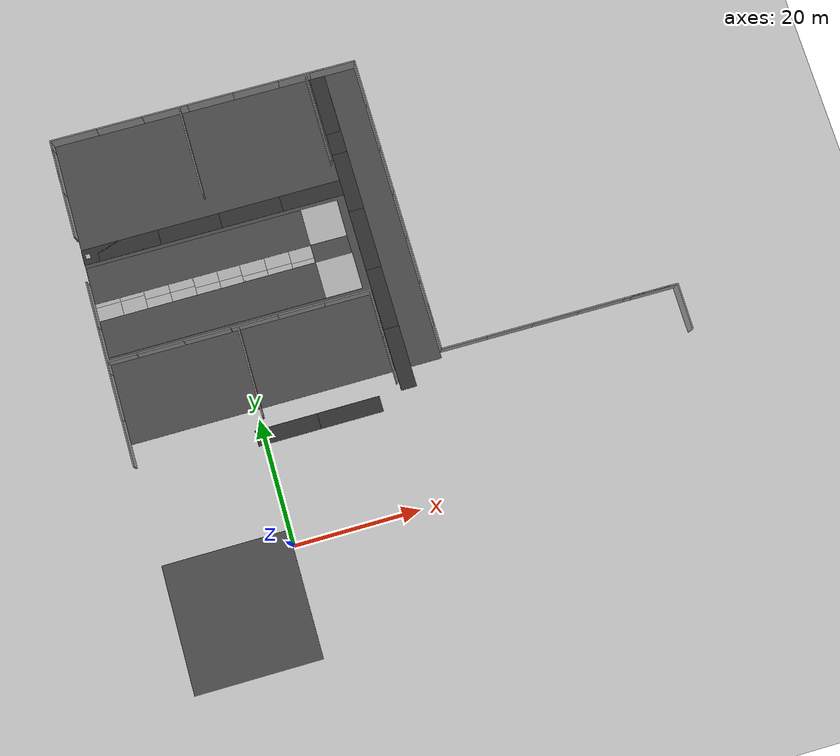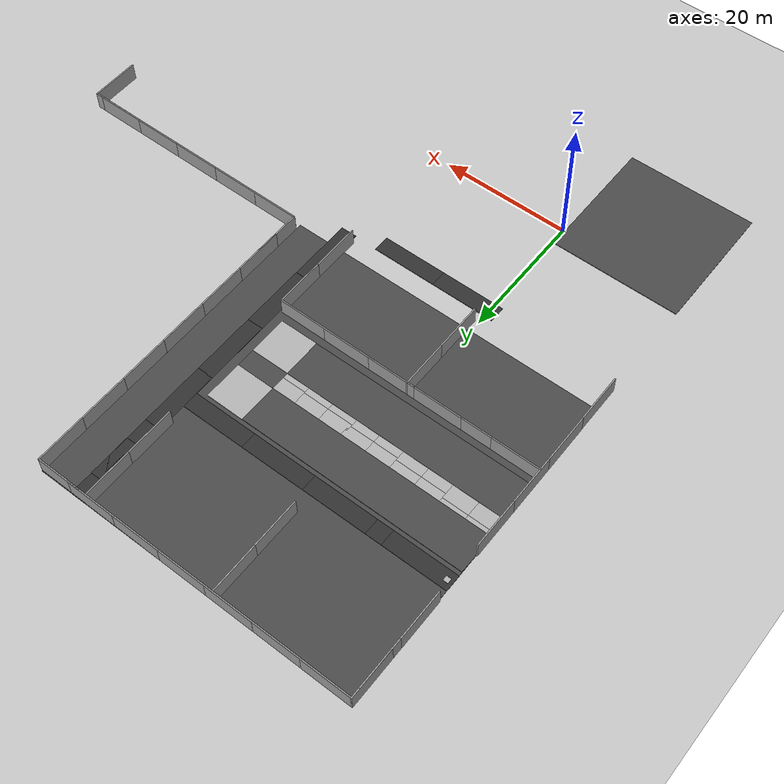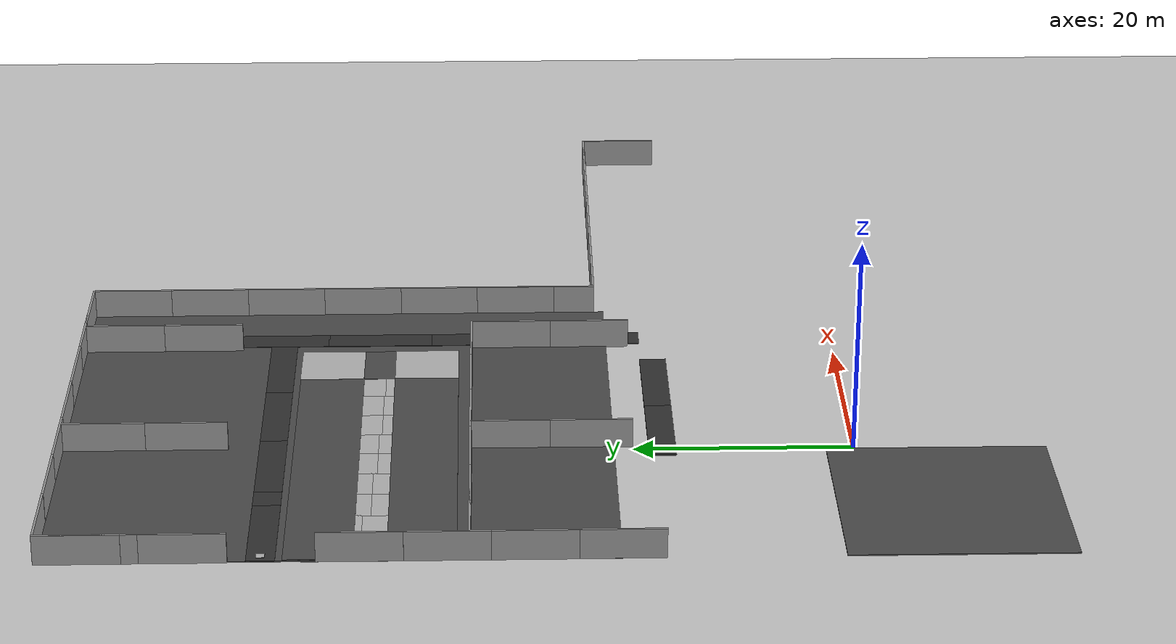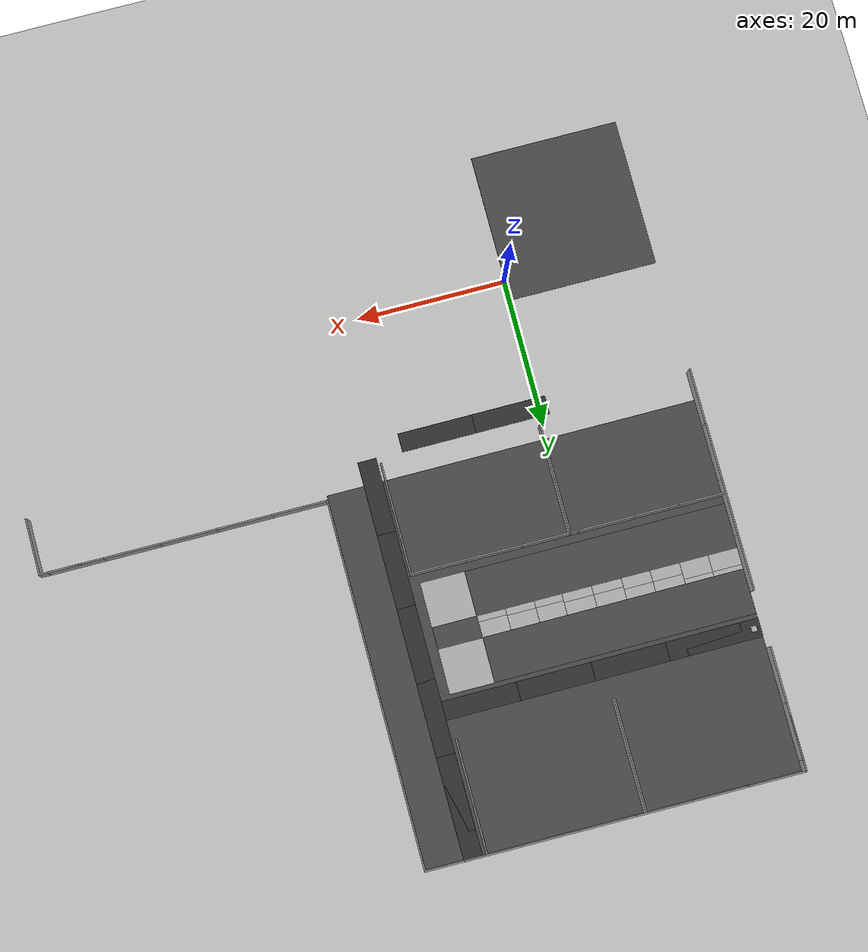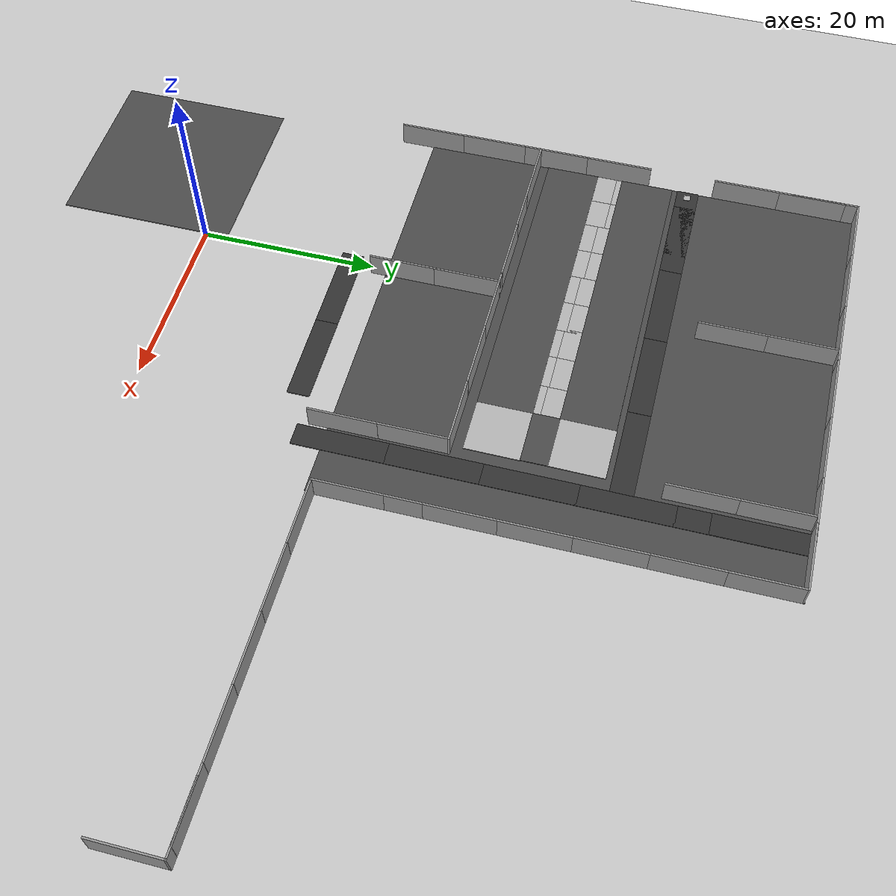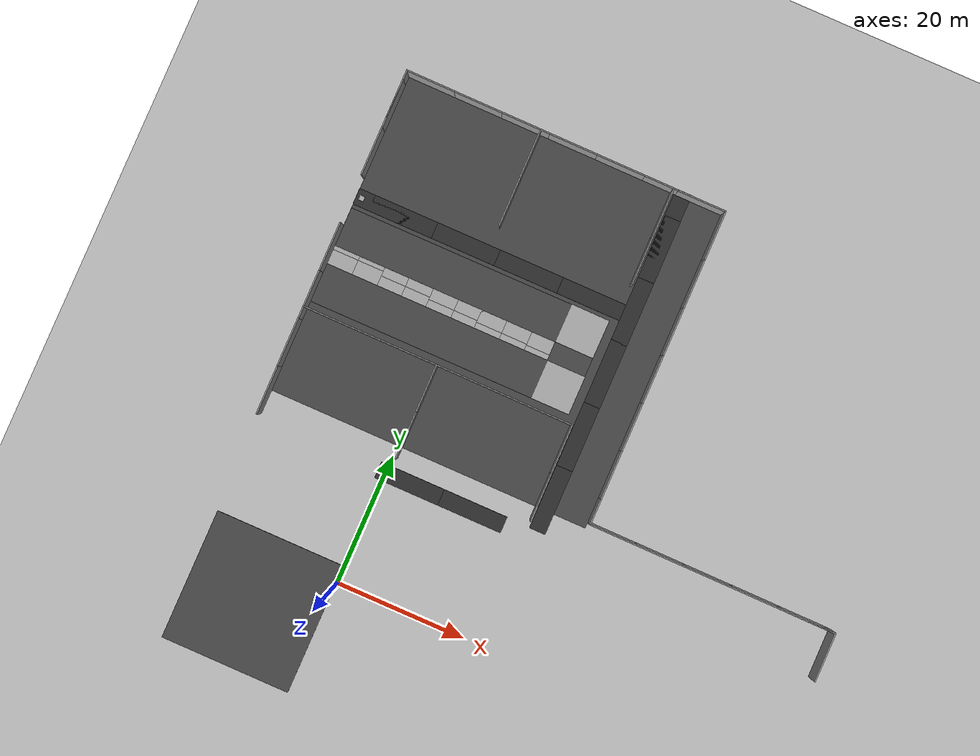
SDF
<sdf version="1.7">
 <world name="default">
  <model name="ground_plane">
   <static>1</static>
   <link name="link">
    <collision name="collision">
     <geometry><plane><normal>0 0 1</normal><size>100 100</size></plane></geometry>
     <surface><friction><ode><mu>100</mu><mu2>50</mu2></ode></friction></surface>
    </collision>
    <visual name="visual">
     <cast_shadows>0</cast_shadows>
     <geometry><plane><normal>0 0 1</normal><size>100 100</size></plane></geometry>
     <material>
      <script><uri>file://media/materials/scripts/gazebo.material</uri><name>Gazebo/Grey</name></script>
     </material>
    </visual>
   </link>
  </model>
  <model name="asphalt_plane">
   <static>1</static>
   <link name="link">
    <collision name="collision">
     <geometry><box><size>20 20 0.1</size></box></geometry>
     <surface><friction><ode><mu>100</mu><mu2>50</mu2></ode></friction></surface>
    </collision>
    <visual name="visual">
     <cast_shadows>0</cast_shadows>
     <geometry><box><size>20 20 0.1</size></box></geometry>
     <material>
      <script>
       <uri>model://asphalt_plane/materials/scripts</uri>
       <uri>model://asphalt_plane/materials/textures</uri>
       <name>vrc/asphalt</name>
      </script>
     </material>
    </visual>
   </link>
   <pose>-10.1692 -7.43707 0 0 -0 0</pose>
  </model>
  <model name="side walk">
   <pose>13.7924 17.3826 0 0 -0 0</pose>
   <static>1</static>
   <link name="link">
    <visual name="visual">
     <pose>0 0 0.05 0 -0 0</pose>
     <geometry><box><size>10 2.5 0.1</size></box></geometry>
     <material><ambient>0.2 0.2 0.2 1</ambient></material>
    </visual>
    <collision name="collision">
     <pose>0 0 0.05 0 -0 0</pose>
     <geometry><box><size>10 2.5 0.1</size></box></geometry>
    </collision>
   </link>
  </model>
  <model name="side walk_clone">
   <pose>3.79611 17.3771 0 0 -0 0</pose>
   <static>1</static>
   <link name="link">
    <visual name="visual">
     <pose>0 0 0.05 0 -0 0</pose>
     <geometry><box><size>10 2.5 0.1</size></box></geometry>
     <material><ambient>0.2 0.2 0.2 1</ambient></material>
    </visual>
    <collision name="collision">
     <pose>0 0 0.05 0 -0 0</pose>
     <geometry><box><size>10 2.5 0.1</size></box></geometry>
    </collision>
   </link>
  </model>
  <model name="asphalt_plane_0_clone_clone">
   <static>1</static>
   <link name="link">
    <collision name="collision"><geometry><box><size>50 50 0.1</size></box></geometry></collision>
    <visual name="visual">
     <cast_shadows>0</cast_shadows>
     <geometry><box><size>50 50 0.1</size></box></geometry>
     <material>
      <script>
       <uri>model://asphalt_plane/materials/scripts</uri>
       <uri>model://asphalt_plane/materials/textures</uri>
       <name>vrc/asphalt</name>
      </script>
     </material>
    </visual>
   </link>
   <pose>4.81 46.7209 0 0 -0 0</pose>
  </model>
  <model name="side walk_clone_1_clone_clone_clone">
   <pose>23.5717 23.5135 0 0 0 -1.5667</pose>
   <static>1</static>
   <link name="link">
    <visual name="visual">
     <pose>0 0 0.05 0 -0 0</pose>
     <geometry><box><size>10 2.5 0.1</size></box></geometry>
     <material><ambient>0.2 0.2 0.2 1</ambient></material>
    </visual>
    <collision name="collision">
     <pose>0 0 0.05 0 -0 0</pose>
     <geometry><box><size>10 2.5 0.1</size></box></geometry>
    </collision>
   </link>
  </model>
  <model name="side walk_clone_1_clone_clone_clone_0">
   <pose>23.5407 33.4582 0 0 0 -1.5667</pose>
   <static>1</static>
   <link name="link">
    <visual name="visual">
     <pose>0 0 0.05 0 -0 0</pose>
     <geometry><box><size>10 2.5 0.1</size></box></geometry>
     <material><ambient>0.2 0.2 0.2 1</ambient></material>
    </visual>
    <collision name="collision">
     <pose>0 0 0.05 0 -0 0</pose>
     <geometry><box><size>10 2.5 0.1</size></box></geometry>
    </collision>
   </link>
  </model>
  <model name="side walk_clone_1_clone_clone_clone_1">
   <pose>23.5123 43.4347 0 0 0 -1.5667</pose>
   <static>1</static>
   <link name="link">
    <visual name="visual">
     <pose>0 0 0.05 0 -0 0</pose>
     <geometry><box><size>10 2.5 0.1</size></box></geometry>
     <material><ambient>0.2 0.2 0.2 1</ambient></material>
    </visual>
    <collision name="collision">
     <pose>0 0 0.05 0 -0 0</pose>
     <geometry><box><size>10 2.5 0.1</size></box></geometry>
    </collision>
   </link>
  </model>
  <model name="side walk_clone_1_clone_clone_clone_2">
   <pose>23.482 53.3149 0 0 0 -1.5667</pose>
   <static>1</static>
   <link name="link">
    <visual name="visual">
     <pose>0 0 0.05 0 -0 0</pose>
     <geometry><box><size>10 2.5 0.1</size></box></geometry>
     <material><ambient>0.2 0.2 0.2 1</ambient></material>
    </visual>
    <collision name="collision">
     <pose>0 0 0.05 0 -0 0</pose>
     <geometry><box><size>10 2.5 0.1</size></box></geometry>
    </collision>
   </link>
  </model>
  <model name="side walk_clone_1_clone_clone_clone_2_clone">
   <pose>23.4414 63.1752 0 0 0 -1.5667</pose>
   <static>1</static>
   <link name="link">
    <visual name="visual">
     <pose>0 0 0.05 0 -0 0</pose>
     <geometry><box><size>10 2.5 0.1</size></box></geometry>
     <material><ambient>0.2 0.2 0.2 1</ambient></material>
    </visual>
    <collision name="collision">
     <pose>0 0 0.05 0 -0 0</pose>
     <geometry><box><size>10 2.5 0.1</size></box></geometry>
    </collision>
   </link>
  </model>
  <model name="side walk_clone_1_clone_clone_clone_2_clone_0">
   <pose>23.4031 66.7362 0 0 0 -1.5667</pose>
   <static>1</static>
   <link name="link">
    <visual name="visual">
     <pose>0 0 0.05 0 -0 0</pose>
     <geometry><box><size>10 2.5 0.1</size></box></geometry>
     <material><ambient>0.2 0.2 0.2 1</ambient></material>
    </visual>
    <collision name="collision">
     <pose>0 0 0.05 0 -0 0</pose>
     <geometry><box><size>10 2.5 0.1</size></box></geometry>
    </collision>
   </link>
  </model>
  <model name="grey_wall_clone_clone">
   <static>1</static>
   <link name="link">
    <pose>0 0 1.4 0 -0 0</pose>
    <collision name="collision"><geometry><box><size>7.5 0.2 2.8</size></box></geometry></collision>
    <visual name="visual">
     <cast_shadows>0</cast_shadows>
     <geometry><box><size>7.5 0.2 2.8</size></box></geometry>
     <material>
      <script>
       <uri>model://grey_wall/materials/scripts</uri>
       <uri>model://grey_wall/materials/textures</uri>
       <name>vrc/grey_wall</name>
      </script>
     </material>
    </visual>
   </link>
   <pose>0.663264 23.7766 0 0 0 -1.56776</pose>
  </model>
  <model name="side walk_clone_4_clone">
   <pose>17.2612 52.615 0 0 -0 0</pose>
   <static>1</static>
   <link name="link">
    <visual name="visual">
     <pose>0 0 0.05 0 -0 0</pose>
     <geometry><box><size>10 2.5 0.1</size></box></geometry>
     <material><ambient>0.2 0.2 0.2 1</ambient></material>
    </visual>
    <collision name="collision">
     <pose>0 0 0.05 0 -0 0</pose>
     <geometry><box><size>10 2.5 0.1</size></box></geometry>
    </collision>
   </link>
  </model>
  <model name="side walk_clone_4_clone_0">
   <pose>7.25478 52.6157 0 0 -0 0</pose>
   <static>1</static>
   <link name="link">
    <visual name="visual">
     <pose>0 0 0.05 0 -0 0</pose>
     <geometry><box><size>10 2.5 0.1</size></box></geometry>
     <material><ambient>0.2 0.2 0.2 1</ambient></material>
    </visual>
    <collision name="collision">
     <pose>0 0 0.05 0 -0 0</pose>
     <geometry><box><size>10 2.5 0.1</size></box></geometry>
    </collision>
   </link>
  </model>
  <model name="side walk_clone_4_clone_1">
   <pose>-2.73893 52.607 0 0 -0 0</pose>
   <static>1</static>
   <link name="link">
    <visual name="visual">
     <pose>0 0 0.05 0 -0 0</pose>
     <geometry><box><size>10 2.5 0.1</size></box></geometry>
     <material><ambient>0.2 0.2 0.2 1</ambient></material>
    </visual>
    <collision name="collision">
     <pose>0 0 0.05 0 -0 0</pose>
     <geometry><box><size>10 2.5 0.1</size></box></geometry>
    </collision>
   </link>
  </model>
  <model name="side walk_clone_4_clone_2">
   <pose>-12.7156 52.6002 0 0 -0 0</pose>
   <static>1</static>
   <link name="link">
    <visual name="visual">
     <pose>0 0 0.05 0 -0 0</pose>
     <geometry><box><size>10 2.5 0.1</size></box></geometry>
     <material><ambient>0.2 0.2 0.2 1</ambient></material>
    </visual>
    <collision name="collision">
     <pose>0 0 0.05 0 -0 0</pose>
     <geometry><box><size>10 2.5 0.1</size></box></geometry>
    </collision>
   </link>
  </model>
  <model name="grey_wall_clone_clone_clone">
   <static>1</static>
   <link name="link">
    <pose>0 0 1.4 0 -0 0</pose>
    <collision name="collision"><geometry><box><size>7.5 0.2 2.8</size></box></geometry></collision>
    <visual name="visual">
     <cast_shadows>0</cast_shadows>
     <geometry><box><size>7.5 0.2 2.8</size></box></geometry>
     <material>
      <script>
       <uri>model://grey_wall/materials/scripts</uri>
       <uri>model://grey_wall/materials/textures</uri>
       <name>vrc/grey_wall</name>
      </script>
     </material>
    </visual>
   </link>
   <pose>0.641842 31.1008 0 0 0 -1.56776</pose>
  </model>
  <model name="grey_wall_clone_clone_clone_0">
   <static>1</static>
   <link name="link">
    <pose>0 0 1.4 0 -0 0</pose>
    <collision name="collision"><geometry><box><size>7.5 0.2 2.8</size></box></geometry></collision>
    <visual name="visual">
     <cast_shadows>0</cast_shadows>
     <geometry><box><size>7.5 0.2 2.8</size></box></geometry>
     <material>
      <script>
       <uri>model://grey_wall/materials/scripts</uri>
       <uri>model://grey_wall/materials/textures</uri>
       <name>vrc/grey_wall</name>
      </script>
     </material>
    </visual>
   </link>
   <pose>0.782654 60.3851 0 0 0 -1.56776</pose>
  </model>
  <model name="grey_wall_clone_clone_clone_1">
   <static>1</static>
   <link name="link">
    <pose>0 0 1.4 0 -0 0</pose>
    <collision name="collision"><geometry><box><size>7.5 0.2 2.8</size></box></geometry></collision>
    <visual name="visual">
     <cast_shadows>0</cast_shadows>
     <geometry><box><size>7.5 0.2 2.8</size></box></geometry>
     <material>
      <script>
       <uri>model://grey_wall/materials/scripts</uri>
       <uri>model://grey_wall/materials/textures</uri>
       <name>vrc/grey_wall</name>
      </script>
     </material>
    </visual>
   </link>
   <pose>0.745884 67.8409 0 0 0 -1.56776</pose>
  </model>
  <model name="grey_wall_clone_clone_clone_2">
   <static>1</static>
   <link name="link">
    <pose>0 0 1.4 0 -0 0</pose>
    <collision name="collision"><geometry><box><size>7.5 0.2 2.8</size></box></geometry></collision>
    <visual name="visual">
     <cast_shadows>0</cast_shadows>
     <geometry><box><size>7.5 0.2 2.8</size></box></geometry>
     <material>
      <script>
       <uri>model://grey_wall/materials/scripts</uri>
       <uri>model://grey_wall/materials/textures</uri>
       <name>vrc/grey_wall</name>
      </script>
     </material>
    </visual>
   </link>
   <pose>-4.2983 34.7434 0 0 -0 3.13795</pose>
  </model>
  <model name="grey_wall_clone_clone_clone_2_clone">
   <static>1</static>
   <link name="link">
    <pose>0 0 1.4 0 -0 0</pose>
    <collision name="collision"><geometry><box><size>7.5 0.2 2.8</size></box></geometry></collision>
    <visual name="visual">
     <cast_shadows>0</cast_shadows>
     <geometry><box><size>7.5 0.2 2.8</size></box></geometry>
     <material>
      <script>
       <uri>model://grey_wall/materials/scripts</uri>
       <uri>model://grey_wall/materials/textures</uri>
       <name>vrc/grey_wall</name>
      </script>
     </material>
    </visual>
   </link>
   <pose>-11.7464 34.7461 0 0 -0 3.13795</pose>
  </model>
  <model name="grey_wall_clone_clone_clone_2_clone_0">
   <static>1</static>
   <link name="link">
    <pose>0 0 1.4 0 -0 0</pose>
    <collision name="collision"><geometry><box><size>7.5 0.2 2.8</size></box></geometry></collision>
    <visual name="visual">
     <cast_shadows>0</cast_shadows>
     <geometry><box><size>7.5 0.2 2.8</size></box></geometry>
     <material>
      <script>
       <uri>model://grey_wall/materials/scripts</uri>
       <uri>model://grey_wall/materials/textures</uri>
       <name>vrc/grey_wall</name>
      </script>
     </material>
    </visual>
   </link>
   <pose>-16.4804 34.7656 0 0 -0 3.13795</pose>
  </model>
  <model name="grey_wall_clone_clone_clone_2_clone_1">
   <static>1</static>
   <link name="link">
    <pose>0 0 1.4 0 -0 0</pose>
    <collision name="collision"><geometry><box><size>7.5 0.2 2.8</size></box></geometry></collision>
    <visual name="visual">
     <cast_shadows>0</cast_shadows>
     <geometry><box><size>7.5 0.2 2.8</size></box></geometry>
     <material>
      <script>
       <uri>model://grey_wall/materials/scripts</uri>
       <uri>model://grey_wall/materials/textures</uri>
       <name>vrc/grey_wall</name>
      </script>
     </material>
    </visual>
   </link>
   <pose>3.28789 34.7184 0 0 -0 3.13795</pose>
  </model>
  <model name="grey_wall_clone_clone_clone_2_clone_2">
   <static>1</static>
   <link name="link">
    <pose>0 0 1.4 0 -0 0</pose>
    <collision name="collision"><geometry><box><size>7.5 0.2 2.8</size></box></geometry></collision>
    <visual name="visual">
     <cast_shadows>0</cast_shadows>
     <geometry><box><size>7.5 0.2 2.8</size></box></geometry>
     <material>
      <script>
       <uri>model://grey_wall/materials/scripts</uri>
       <uri>model://grey_wall/materials/textures</uri>
       <name>vrc/grey_wall</name>
      </script>
     </material>
    </visual>
   </link>
   <pose>10.7527 34.6951 0 0 -0 3.13795</pose>
  </model>
  <model name="grey_wall_clone_clone_clone_2_clone_3">
   <static>1</static>
   <link name="link">
    <pose>0 0 1.4 0 -0 0</pose>
    <collision name="collision"><geometry><box><size>7.5 0.2 2.8</size></box></geometry></collision>
    <visual name="visual">
     <cast_shadows>0</cast_shadows>
     <geometry><box><size>7.5 0.2 2.8</size></box></geometry>
     <material>
      <script>
       <uri>model://grey_wall/materials/scripts</uri>
       <uri>model://grey_wall/materials/textures</uri>
       <name>vrc/grey_wall</name>
      </script>
     </material>
    </visual>
   </link>
   <pose>18.2492 34.6563 0 0 -0 3.13795</pose>
  </model>
  <model name="grey_wall_clone_clone_clone_clone">
   <static>1</static>
   <link name="link">
    <pose>0 0 1.4 0 -0 0</pose>
    <collision name="collision"><geometry><box><size>7.5 0.2 2.8</size></box></geometry></collision>
    <visual name="visual">
     <cast_shadows>0</cast_shadows>
     <geometry><box><size>7.5 0.2 2.8</size></box></geometry>
     <material>
      <script>
       <uri>model://grey_wall/materials/scripts</uri>
       <uri>model://grey_wall/materials/textures</uri>
       <name>vrc/grey_wall</name>
      </script>
     </material>
    </visual>
   </link>
   <pose>21.9008 30.8248 0 0 0 -1.56776</pose>
  </model>
  <model name="grey_wall_clone_clone_clone_clone_0">
   <static>1</static>
   <link name="link">
    <pose>0 0 1.4 0 -0 0</pose>
    <collision name="collision"><geometry><box><size>7.5 0.2 2.8</size></box></geometry></collision>
    <visual name="visual">
     <cast_shadows>0</cast_shadows>
     <geometry><box><size>7.5 0.2 2.8</size></box></geometry>
     <material>
      <script>
       <uri>model://grey_wall/materials/scripts</uri>
       <uri>model://grey_wall/materials/textures</uri>
       <name>vrc/grey_wall</name>
      </script>
     </material>
    </visual>
   </link>
   <pose>21.932 23.3788 0 0 0 -1.56776</pose>
  </model>
  <model name="grey_wall_clone_clone_clone_2_clone_0_clone">
   <static>1</static>
   <link name="link">
    <pose>0 0 1.4 0 -0 0</pose>
    <collision name="collision"><geometry><box><size>7.5 0.2 2.8</size></box></geometry></collision>
    <visual name="visual">
     <cast_shadows>0</cast_shadows>
     <geometry><box><size>7.5 0.2 2.8</size></box></geometry>
     <material>
      <script>
       <uri>model://grey_wall/materials/scripts</uri>
       <uri>model://grey_wall/materials/textures</uri>
       <name>vrc/grey_wall</name>
      </script>
     </material>
    </visual>
   </link>
   <pose>-16.4775 71.7397 0 0 -0 3.13795</pose>
  </model>
  <model name="grey_wall_clone_clone_clone_2_clone_0_clone_0">
   <static>1</static>
   <link name="link">
    <pose>0 0 1.4 0 -0 0</pose>
    <collision name="collision"><geometry><box><size>7.5 0.2 2.8</size></box></geometry></collision>
    <visual name="visual">
     <cast_shadows>0</cast_shadows>
     <geometry><box><size>7.5 0.2 2.8</size></box></geometry>
     <material>
      <script>
       <uri>model://grey_wall/materials/scripts</uri>
       <uri>model://grey_wall/materials/textures</uri>
       <name>vrc/grey_wall</name>
      </script>
     </material>
    </visual>
   </link>
   <pose>-9.07049 71.7023 0 0 -0 3.13795</pose>
  </model>
  <model name="grey_wall_clone_clone_clone_2_clone_0_clone_1">
   <static>1</static>
   <link name="link">
    <pose>0 0 1.4 0 -0 0</pose>
    <collision name="collision"><geometry><box><size>7.5 0.2 2.8</size></box></geometry></collision>
    <visual name="visual">
     <cast_shadows>0</cast_shadows>
     <geometry><box><size>7.5 0.2 2.8</size></box></geometry>
     <material>
      <script>
       <uri>model://grey_wall/materials/scripts</uri>
       <uri>model://grey_wall/materials/textures</uri>
       <name>vrc/grey_wall</name>
      </script>
     </material>
    </visual>
   </link>
   <pose>-1.64416 71.6785 0 0 -0 3.13795</pose>
  </model>
  <model name="grey_wall_clone_clone_clone_2_clone_0_clone_2">
   <static>1</static>
   <link name="link">
    <pose>0 0 1.4 0 -0 0</pose>
    <collision name="collision"><geometry><box><size>7.5 0.2 2.8</size></box></geometry></collision>
    <visual name="visual">
     <cast_shadows>0</cast_shadows>
     <geometry><box><size>7.5 0.2 2.8</size></box></geometry>
     <material>
      <script>
       <uri>model://grey_wall/materials/scripts</uri>
       <uri>model://grey_wall/materials/textures</uri>
       <name>vrc/grey_wall</name>
      </script>
     </material>
    </visual>
   </link>
   <pose>5.83626 71.649 0 0 -0 3.13795</pose>
  </model>
  <model name="grey_wall_clone_clone_clone_2_clone_0_clone_3">
   <static>1</static>
   <link name="link">
    <pose>0 0 1.4 0 -0 0</pose>
    <collision name="collision"><geometry><box><size>7.5 0.2 2.8</size></box></geometry></collision>
    <visual name="visual">
     <cast_shadows>0</cast_shadows>
     <geometry><box><size>7.5 0.2 2.8</size></box></geometry>
     <material>
      <script>
       <uri>model://grey_wall/materials/scripts</uri>
       <uri>model://grey_wall/materials/textures</uri>
       <name>vrc/grey_wall</name>
      </script>
     </material>
    </visual>
   </link>
   <pose>13.3382 71.616 0 0 -0 3.13795</pose>
  </model>
  <model name="grey_wall_clone_clone_clone_2_clone_0_clone_4">
   <static>1</static>
   <link name="link">
    <pose>0 0 1.4 0 -0 0</pose>
    <collision name="collision"><geometry><box><size>7.5 0.2 2.8</size></box></geometry></collision>
    <visual name="visual">
     <cast_shadows>0</cast_shadows>
     <geometry><box><size>7.5 0.2 2.8</size></box></geometry>
     <material>
      <script>
       <uri>model://grey_wall/materials/scripts</uri>
       <uri>model://grey_wall/materials/textures</uri>
       <name>vrc/grey_wall</name>
      </script>
     </material>
    </visual>
   </link>
   <pose>20.8292 71.5956 0 0 -0 3.13795</pose>
  </model>
  <model name="grey_wall_clone_clone_clone_2_clone_0_clone_5">
   <static>1</static>
   <link name="link">
    <pose>0 0 1.4 0 -0 0</pose>
    <collision name="collision"><geometry><box><size>7.5 0.2 2.8</size></box></geometry></collision>
    <visual name="visual">
     <cast_shadows>0</cast_shadows>
     <geometry><box><size>7.5 0.2 2.8</size></box></geometry>
     <material>
      <script>
       <uri>model://grey_wall/materials/scripts</uri>
       <uri>model://grey_wall/materials/textures</uri>
       <name>vrc/grey_wall</name>
      </script>
     </material>
    </visual>
   </link>
   <pose>26.0628 71.555 0 0 -0 3.13795</pose>
  </model>
  <model name="road_plane_without_marks_clone_clone_clone_1">
   <static>1</static>
   <link name="link">
    <collision name="collision"><geometry><box><size>35.3438 6 0.1</size></box></geometry></collision>
    <visual name="visual">
     <cast_shadows>0</cast_shadows>
     <geometry><box><size>35.3438 6 0.1</size></box></geometry>
     <material>
      <script>
       <uri>model://road_plane_without_marks/materials/scripts</uri>
       <uri>model://road_plane_without_marks/materials/textures</uri>
       <name>vrc/road_no_m</name>
      </script>
     </material>
    </visual>
   </link>
   <pose>-2.47636 47.7503 0.081661 0 -0 0</pose>
  </model>
  <model name="road_diag_clone_2">
   <static>1</static>
   <link name="link">
    <collision name="collision"><geometry><box><size>6 6 0.1</size></box></geometry></collision>
    <visual name="visual">
     <cast_shadows>0</cast_shadows>
     <geometry><box><size>6 6 0.1</size></box></geometry>
     <material>
      <script>
       <uri>model://road_diag/materials/scripts</uri>
       <uri>model://road_diag/materials/textures</uri>
       <name>vrc/diag</name>
      </script>
     </material>
    </visual>
   </link>
   <pose>17.985 38.8563 0.084251 0 -0 0</pose>
  </model>
  <model name="road_diag_clone_clone_clone_clone">
   <static>1</static>
   <link name="link">
    <collision name="collision"><geometry><box><size>6 6 0.1</size></box></geometry></collision>
    <visual name="visual">
     <cast_shadows>0</cast_shadows>
     <geometry><box><size>6 6 0.1</size></box></geometry>
     <material>
      <script>
       <uri>model://road_diag/materials/scripts</uri>
       <uri>model://road_diag/materials/textures</uri>
       <name>vrc/diag</name>
      </script>
     </material>
    </visual>
   </link>
   <pose>17.9385 47.7789 0.084251 0 -0 1.56496</pose>
  </model>
  <model name="road_plane_without_marks_clone_clone_clone_1_clone">
   <static>1</static>
   <link name="link">
    <collision name="collision"><geometry><box><size>35.3438 6 0.1</size></box></geometry></collision>
    <visual name="visual">
     <cast_shadows>0</cast_shadows>
     <geometry><box><size>35.3438 6 0.1</size></box></geometry>
     <material>
      <script>
       <uri>model://road_plane_without_marks/materials/scripts</uri>
       <uri>model://road_plane_without_marks/materials/textures</uri>
       <name>vrc/road_no_m</name>
      </script>
     </material>
    </visual>
   </link>
   <pose>-2.59325 38.8724 0.081661 0 -0 0</pose>
  </model>
  <model name="road_plane_without_marks_clone_0_clone_0">
   <static>1</static>
   <link name="link">
    <collision name="collision"><geometry><box><size>6.09192 6 0.1</size></box></geometry></collision>
    <visual name="visual">
     <cast_shadows>0</cast_shadows>
     <geometry><box><size>6.09192 6 0.1</size></box></geometry>
     <material>
      <script>
       <uri>model://road_plane_without_marks/materials/scripts</uri>
       <uri>model://road_plane_without_marks/materials/textures</uri>
       <name>vrc/road_no_m</name>
      </script>
     </material>
    </visual>
   </link>
   <pose>17.9268 43.4917 0.074352 0 -0 1.57814</pose>
  </model>
  <model name="side walk_clone_4_clone_2_clone">
   <pose>-15.2237 52.5951 0 0 -0 0</pose>
   <static>1</static>
   <link name="link">
    <visual name="visual">
     <pose>0 0 0.05 0 -0 0</pose>
     <geometry><box><size>10 2.5 0.1</size></box></geometry>
     <material><ambient>0.2 0.2 0.2 1</ambient></material>
    </visual>
    <collision name="collision">
     <pose>0 0 0.05 0 -0 0</pose>
     <geometry><box><size>10 2.5 0.1</size></box></geometry>
    </collision>
   </link>
  </model>
  <model name="grey_wall_clone_clone_clone_clone_clone">
   <static>1</static>
   <link name="link">
    <pose>0 0 1.4 0 -0 0</pose>
    <collision name="collision"><geometry><box><size>7.5 0.2 2.8</size></box></geometry></collision>
    <visual name="visual">
     <cast_shadows>0</cast_shadows>
     <geometry><box><size>7.5 0.2 2.8</size></box></geometry>
     <material>
      <script>
       <uri>model://grey_wall/materials/scripts</uri>
       <uri>model://grey_wall/materials/textures</uri>
       <name>vrc/grey_wall</name>
      </script>
     </material>
    </visual>
   </link>
   <pose>21.6309 67.7575 0 0 0 -1.56776</pose>
  </model>
  <model name="grey_wall_clone_clone_clone_clone_clone_0">
   <static>1</static>
   <link name="link">
    <pose>0 0 1.4 0 -0 0</pose>
    <collision name="collision"><geometry><box><size>7.5 0.2 2.8</size></box></geometry></collision>
    <visual name="visual">
     <cast_shadows>0</cast_shadows>
     <geometry><box><size>7.5 0.2 2.8</size></box></geometry>
     <material>
      <script>
       <uri>model://grey_wall/materials/scripts</uri>
       <uri>model://grey_wall/materials/textures</uri>
       <name>vrc/grey_wall</name>
      </script>
     </material>
    </visual>
   </link>
   <pose>21.6488 60.2891 0 0 0 -1.56776</pose>
  </model>
  <model name="mud_box_clone_5_clone_clone">
   <static>1</static>
   <link name="link">
    <collision name="collision"><geometry><box><size>8 10 0.2</size></box></geometry></collision>
    <visual name="visual_1">
     <pose>-2 2.5 0 0 -0 0</pose>
     <cast_shadows>0</cast_shadows>
     <geometry><box><size>4 5 0.2</size></box></geometry>
     <material>
      <script>
       <uri>model://mud_box/materials/scripts</uri>
       <uri>model://mud_box/materials/textures</uri>
       <name>vrc/mud</name>
      </script>
     </material>
    </visual>
    <visual name="visual_2">
     <pose>2 2.5 0 0 -0 0</pose>
     <cast_shadows>0</cast_shadows>
     <geometry><box><size>4 5 0.2</size></box></geometry>
     <material>
      <script>
       <uri>model://mud_box/materials/scripts</uri>
       <uri>model://mud_box/materials/textures</uri>
       <name>vrc/mud</name>
      </script>
     </material>
    </visual>
    <visual name="visual_3">
     <pose>2 -2.5 0 0 -0 0</pose>
     <cast_shadows>0</cast_shadows>
     <geometry><box><size>4 5 0.2</size></box></geometry>
     <material>
      <script>
       <uri>model://mud_box/materials/scripts</uri>
       <uri>model://mud_box/materials/textures</uri>
       <name>vrc/mud</name>
      </script>
     </material>
    </visual>
    <visual name="visual_4">
     <pose>-2 -2.5 0 0 -0 0</pose>
     <cast_shadows>0</cast_shadows>
     <geometry><box><size>4 5 0.2</size></box></geometry>
     <material>
      <script>
       <uri>model://mud_box/materials/scripts</uri>
       <uri>model://mud_box/materials/textures</uri>
       <name>vrc/mud</name>
      </script>
     </material>
    </visual>
   </link>
   <pose>-16.1685 44.1215 0 0 -0 0</pose>
  </model>
  <model name="mud_box_clone_5_clone_clone_0">
   <static>1</static>
   <link name="link">
    <collision name="collision"><geometry><box><size>8 10 0.2</size></box></geometry></collision>
    <visual name="visual_1">
     <pose>-2 2.5 0 0 -0 0</pose>
     <cast_shadows>0</cast_shadows>
     <geometry><box><size>4 5 0.2</size></box></geometry>
     <material>
      <script>
       <uri>model://mud_box/materials/scripts</uri>
       <uri>model://mud_box/materials/textures</uri>
       <name>vrc/mud</name>
      </script>
     </material>
    </visual>
    <visual name="visual_2">
     <pose>2 2.5 0 0 -0 0</pose>
     <cast_shadows>0</cast_shadows>
     <geometry><box><size>4 5 0.2</size></box></geometry>
     <material>
      <script>
       <uri>model://mud_box/materials/scripts</uri>
       <uri>model://mud_box/materials/textures</uri>
       <name>vrc/mud</name>
      </script>
     </material>
    </visual>
    <visual name="visual_3">
     <pose>2 -2.5 0 0 -0 0</pose>
     <cast_shadows>0</cast_shadows>
     <geometry><box><size>4 5 0.2</size></box></geometry>
     <material>
      <script>
       <uri>model://mud_box/materials/scripts</uri>
       <uri>model://mud_box/materials/textures</uri>
       <name>vrc/mud</name>
      </script>
     </material>
    </visual>
    <visual name="visual_4">
     <pose>-2 -2.5 0 0 -0 0</pose>
     <cast_shadows>0</cast_shadows>
     <geometry><box><size>4 5 0.2</size></box></geometry>
     <material>
      <script>
       <uri>model://mud_box/materials/scripts</uri>
       <uri>model://mud_box/materials/textures</uri>
       <name>vrc/mud</name>
      </script>
     </material>
    </visual>
   </link>
   <pose>-8.32219 43.3947 0 0 -0 0</pose>
  </model>
  <model name="mud_box_clone_5_clone_clone_1">
   <static>1</static>
   <link name="link">
    <collision name="collision"><geometry><box><size>8 10 0.2</size></box></geometry></collision>
    <visual name="visual_1">
     <pose>-2 2.5 0 0 -0 0</pose>
     <cast_shadows>0</cast_shadows>
     <geometry><box><size>4 5 0.2</size></box></geometry>
     <material>
      <script>
       <uri>model://mud_box/materials/scripts</uri>
       <uri>model://mud_box/materials/textures</uri>
       <name>vrc/mud</name>
      </script>
     </material>
    </visual>
    <visual name="visual_2">
     <pose>2 2.5 0 0 -0 0</pose>
     <cast_shadows>0</cast_shadows>
     <geometry><box><size>4 5 0.2</size></box></geometry>
     <material>
      <script>
       <uri>model://mud_box/materials/scripts</uri>
       <uri>model://mud_box/materials/textures</uri>
       <name>vrc/mud</name>
      </script>
     </material>
    </visual>
    <visual name="visual_3">
     <pose>2 -2.5 0 0 -0 0</pose>
     <cast_shadows>0</cast_shadows>
     <geometry><box><size>4 5 0.2</size></box></geometry>
     <material>
      <script>
       <uri>model://mud_box/materials/scripts</uri>
       <uri>model://mud_box/materials/textures</uri>
       <name>vrc/mud</name>
      </script>
     </material>
    </visual>
    <visual name="visual_4">
     <pose>-2 -2.5 0 0 -0 0</pose>
     <cast_shadows>0</cast_shadows>
     <geometry><box><size>4 5 0.2</size></box></geometry>
     <material>
      <script>
       <uri>model://mud_box/materials/scripts</uri>
       <uri>model://mud_box/materials/textures</uri>
       <name>vrc/mud</name>
      </script>
     </material>
    </visual>
   </link>
   <pose>-0.439616 43.0488 0 0 -0 0</pose>
  </model>
  <model name="mud_box_clone_5_clone_clone_2">
   <static>1</static>
   <link name="link">
    <collision name="collision"><geometry><box><size>8 10 0.2</size></box></geometry></collision>
    <visual name="visual_1">
     <pose>-2 2.5 0 0 -0 0</pose>
     <cast_shadows>0</cast_shadows>
     <geometry><box><size>4 5 0.2</size></box></geometry>
     <material>
      <script>
       <uri>model://mud_box/materials/scripts</uri>
       <uri>model://mud_box/materials/textures</uri>
       <name>vrc/mud</name>
      </script>
     </material>
    </visual>
    <visual name="visual_2">
     <pose>2 2.5 0 0 -0 0</pose>
     <cast_shadows>0</cast_shadows>
     <geometry><box><size>4 5 0.2</size></box></geometry>
     <material>
      <script>
       <uri>model://mud_box/materials/scripts</uri>
       <uri>model://mud_box/materials/textures</uri>
       <name>vrc/mud</name>
      </script>
     </material>
    </visual>
    <visual name="visual_3">
     <pose>2 -2.5 0 0 -0 0</pose>
     <cast_shadows>0</cast_shadows>
     <geometry><box><size>4 5 0.2</size></box></geometry>
     <material>
      <script>
       <uri>model://mud_box/materials/scripts</uri>
       <uri>model://mud_box/materials/textures</uri>
       <name>vrc/mud</name>
      </script>
     </material>
    </visual>
    <visual name="visual_4">
     <pose>-2 -2.5 0 0 -0 0</pose>
     <cast_shadows>0</cast_shadows>
     <geometry><box><size>4 5 0.2</size></box></geometry>
     <material>
      <script>
       <uri>model://mud_box/materials/scripts</uri>
       <uri>model://mud_box/materials/textures</uri>
       <name>vrc/mud</name>
      </script>
     </material>
    </visual>
   </link>
   <pose>7.26219 42.797 0 0 -0 0</pose>
  </model>
  <model name="mud_box_clone_5_clone_clone_3">
   <static>1</static>
   <link name="link">
    <collision name="collision"><geometry><box><size>8 10 0.2</size></box></geometry></collision>
    <visual name="visual_1">
     <pose>-2 2.5 0 0 -0 0</pose>
     <cast_shadows>0</cast_shadows>
     <geometry><box><size>4 5 0.2</size></box></geometry>
     <material>
      <script>
       <uri>model://mud_box/materials/scripts</uri>
       <uri>model://mud_box/materials/textures</uri>
       <name>vrc/mud</name>
      </script>
     </material>
    </visual>
    <visual name="visual_2">
     <pose>2 2.5 0 0 -0 0</pose>
     <cast_shadows>0</cast_shadows>
     <geometry><box><size>4 5 0.2</size></box></geometry>
     <material>
      <script>
       <uri>model://mud_box/materials/scripts</uri>
       <uri>model://mud_box/materials/textures</uri>
       <name>vrc/mud</name>
      </script>
     </material>
    </visual>
    <visual name="visual_3">
     <pose>2 -2.5 0 0 -0 0</pose>
     <cast_shadows>0</cast_shadows>
     <geometry><box><size>4 5 0.2</size></box></geometry>
     <material>
      <script>
       <uri>model://mud_box/materials/scripts</uri>
       <uri>model://mud_box/materials/textures</uri>
       <name>vrc/mud</name>
      </script>
     </material>
    </visual>
    <visual name="visual_4">
     <pose>-2 -2.5 0 0 -0 0</pose>
     <cast_shadows>0</cast_shadows>
     <geometry><box><size>4 5 0.2</size></box></geometry>
     <material>
      <script>
       <uri>model://mud_box/materials/scripts</uri>
       <uri>model://mud_box/materials/textures</uri>
       <name>vrc/mud</name>
      </script>
     </material>
    </visual>
   </link>
   <pose>15.124 42.6696 0 0 -0 0</pose>
  </model>
  <model name="start_clone">
   <static>1</static>
   <link name="start_link">
    <visual name="visual_start">
     <geometry><box><size>0.75 0.75 0.05</size></box></geometry>
     <material>
      <script>
       <uri>model://start/materials/scripts</uri>
       <uri>model://start/materials/textures</uri>
       <name>start/texture</name>
      </script>
     </material>
    </visual>
   </link>
   <pose>-19.3538 52.6138 0.111043 0 -0 0</pose>
  </model>
  <model name="grey_wall_clone_clone_clone_2_clone_0_clone_5_clone">
   <static>1</static>
   <link name="link">
    <pose>0 0 1.4 0 -0 0</pose>
    <collision name="collision"><geometry><box><size>7.5 0.2 2.8</size></box></geometry></collision>
    <visual name="visual">
     <cast_shadows>0</cast_shadows>
     <geometry><box><size>7.5 0.2 2.8</size></box></geometry>
     <material>
      <script>
       <uri>model://grey_wall/materials/scripts</uri>
       <uri>model://grey_wall/materials/textures</uri>
       <name>vrc/grey_wall</name>
      </script>
     </material>
    </visual>
   </link>
   <pose>33.5551 22.6916 0 0 -0 3.13795</pose>
  </model>
  <model name="grey_wall_clone_clone_clone_2_clone_0_clone_5_clone_0">
   <static>1</static>
   <link name="link">
    <pose>0 0 1.4 0 -0 0</pose>
    <collision name="collision"><geometry><box><size>7.5 0.2 2.8</size></box></geometry></collision>
    <visual name="visual">
     <cast_shadows>0</cast_shadows>
     <geometry><box><size>7.5 0.2 2.8</size></box></geometry>
     <material>
      <script>
       <uri>model://grey_wall/materials/scripts</uri>
       <uri>model://grey_wall/materials/textures</uri>
       <name>vrc/grey_wall</name>
      </script>
     </material>
    </visual>
   </link>
   <pose>40.9462 22.6722 0 0 -0 3.13795</pose>
  </model>
  <model name="grey_wall_clone_clone_clone_2_clone_0_clone_5_clone_1">
   <static>1</static>
   <link name="link">
    <pose>0 0 1.4 0 -0 0</pose>
    <collision name="collision"><geometry><box><size>7.5 0.2 2.8</size></box></geometry></collision>
    <visual name="visual">
     <cast_shadows>0</cast_shadows>
     <geometry><box><size>7.5 0.2 2.8</size></box></geometry>
     <material>
      <script>
       <uri>model://grey_wall/materials/scripts</uri>
       <uri>model://grey_wall/materials/textures</uri>
       <name>vrc/grey_wall</name>
      </script>
     </material>
    </visual>
   </link>
   <pose>48.3734 22.6494 0 0 -0 3.13795</pose>
  </model>
  <model name="grey_wall_clone_clone_clone_2_clone_0_clone_5_clone_2">
   <static>1</static>
   <link name="link">
    <pose>0 0 1.4 0 -0 0</pose>
    <collision name="collision"><geometry><box><size>7.5 0.2 2.8</size></box></geometry></collision>
    <visual name="visual">
     <cast_shadows>0</cast_shadows>
     <geometry><box><size>7.5 0.2 2.8</size></box></geometry>
     <material>
      <script>
       <uri>model://grey_wall/materials/scripts</uri>
       <uri>model://grey_wall/materials/textures</uri>
       <name>vrc/grey_wall</name>
      </script>
     </material>
    </visual>
   </link>
   <pose>55.8523 22.6255 0 0 -0 3.13795</pose>
  </model>
  <model name="grey_wall_clone_clone_clone_2_clone_0_clone_5_clone_3">
   <static>1</static>
   <link name="link">
    <pose>0 0 1.4 0 -0 0</pose>
    <collision name="collision"><geometry><box><size>7.5 0.2 2.8</size></box></geometry></collision>
    <visual name="visual">
     <cast_shadows>0</cast_shadows>
     <geometry><box><size>7.5 0.2 2.8</size></box></geometry>
     <material>
      <script>
       <uri>model://grey_wall/materials/scripts</uri>
       <uri>model://grey_wall/materials/textures</uri>
       <name>vrc/grey_wall</name>
      </script>
     </material>
    </visual>
   </link>
   <pose>63.2952 22.5941 0 0 -0 3.13795</pose>
  </model>
  <model name="grey_wall_clone_clone_clone_2_clone_0_clone_5_clone_3_clone">
   <static>1</static>
   <link name="link">
    <pose>0 0 1.4 0 -0 0</pose>
    <collision name="collision"><geometry><box><size>7.5 0.2 2.8</size></box></geometry></collision>
    <visual name="visual">
     <cast_shadows>0</cast_shadows>
     <geometry><box><size>7.5 0.2 2.8</size></box></geometry>
     <material>
      <script>
       <uri>model://grey_wall/materials/scripts</uri>
       <uri>model://grey_wall/materials/textures</uri>
       <name>vrc/grey_wall</name>
      </script>
     </material>
    </visual>
   </link>
   <pose>64.4741 22.5785 0 0 -0 3.13795</pose>
  </model>
  <model name="grey_wall_clone_clone_clone_clone_0_clone">
   <static>1</static>
   <link name="link">
    <pose>0 0 1.4 0 -0 0</pose>
    <collision name="collision"><geometry><box><size>7.5 0.2 2.8</size></box></geometry></collision>
    <visual name="visual">
     <cast_shadows>0</cast_shadows>
     <geometry><box><size>7.5 0.2 2.8</size></box></geometry>
     <material>
      <script>
       <uri>model://grey_wall/materials/scripts</uri>
       <uri>model://grey_wall/materials/textures</uri>
       <name>vrc/grey_wall</name>
      </script>
     </material>
    </visual>
   </link>
   <pose>68.1341 18.8295 0 0 0 -1.56776</pose>
  </model>
  <model name="grey_wall_clone_clone_clone_clone_1_clone">
   <static>1</static>
   <link name="link">
    <pose>0 0 1.4 0 -0 0</pose>
    <collision name="collision"><geometry><box><size>7.5 0.2 2.8</size></box></geometry></collision>
    <visual name="visual">
     <cast_shadows>0</cast_shadows>
     <geometry><box><size>7.5 0.2 2.8</size></box></geometry>
     <material>
      <script>
       <uri>model://grey_wall/materials/scripts</uri>
       <uri>model://grey_wall/materials/textures</uri>
       <name>vrc/grey_wall</name>
      </script>
     </material>
    </visual>
   </link>
   <pose>-20.152 21.6904 0 0 0 -1.56776</pose>
  </model>
  <model name="grey_wall_clone_clone_clone_clone_1_clone_0">
   <static>1</static>
   <link name="link">
    <pose>0 0 1.4 0 -0 0</pose>
    <collision name="collision"><geometry><box><size>7.5 0.2 2.8</size></box></geometry></collision>
    <visual name="visual">
     <cast_shadows>0</cast_shadows>
     <geometry><box><size>7.5 0.2 2.8</size></box></geometry>
     <material>
      <script>
       <uri>model://grey_wall/materials/scripts</uri>
       <uri>model://grey_wall/materials/textures</uri>
       <name>vrc/grey_wall</name>
      </script>
     </material>
    </visual>
   </link>
   <pose>-20.2019 29.1856 0 0 0 -1.56776</pose>
  </model>
  <model name="grey_wall_clone_clone_clone_clone_1_clone_1">
   <static>1</static>
   <link name="link">
    <pose>0 0 1.4 0 -0 0</pose>
    <collision name="collision"><geometry><box><size>7.5 0.2 2.8</size></box></geometry></collision>
    <visual name="visual">
     <cast_shadows>0</cast_shadows>
     <geometry><box><size>7.5 0.2 2.8</size></box></geometry>
     <material>
      <script>
       <uri>model://grey_wall/materials/scripts</uri>
       <uri>model://grey_wall/materials/textures</uri>
       <name>vrc/grey_wall</name>
      </script>
     </material>
    </visual>
   </link>
   <pose>-20.22 36.647 0 0 0 -1.56776</pose>
  </model>
  <model name="grey_wall_clone_clone_clone_clone_1_clone_2">
   <static>1</static>
   <link name="link">
    <pose>0 0 1.4 0 -0 0</pose>
    <collision name="collision"><geometry><box><size>7.5 0.2 2.8</size></box></geometry></collision>
    <visual name="visual">
     <cast_shadows>0</cast_shadows>
     <geometry><box><size>7.5 0.2 2.8</size></box></geometry>
     <material>
      <script>
       <uri>model://grey_wall/materials/scripts</uri>
       <uri>model://grey_wall/materials/textures</uri>
       <name>vrc/grey_wall</name>
      </script>
     </material>
    </visual>
   </link>
   <pose>-20.2354 44.151 0 0 0 -1.56776</pose>
  </model>
  <model name="grey_wall_clone_clone_clone_clone_1_clone_4">
   <static>1</static>
   <link name="link">
    <pose>0 0 1.4 0 -0 0</pose>
    <collision name="collision"><geometry><box><size>7.5 0.2 2.8</size></box></geometry></collision>
    <visual name="visual">
     <cast_shadows>0</cast_shadows>
     <geometry><box><size>7.5 0.2 2.8</size></box></geometry>
     <material>
      <script>
       <uri>model://grey_wall/materials/scripts</uri>
       <uri>model://grey_wall/materials/textures</uri>
       <name>vrc/grey_wall</name>
      </script>
     </material>
    </visual>
   </link>
   <pose>-20.2864 59.1175 0 0 0 -1.56776</pose>
  </model>
  <model name="grey_wall_clone_clone_clone_clone_1_clone_5">
   <static>1</static>
   <link name="link">
    <pose>0 0 1.4 0 -0 0</pose>
    <collision name="collision"><geometry><box><size>7.5 0.2 2.8</size></box></geometry></collision>
    <visual name="visual">
     <cast_shadows>0</cast_shadows>
     <geometry><box><size>7.5 0.2 2.8</size></box></geometry>
     <material>
      <script>
       <uri>model://grey_wall/materials/scripts</uri>
       <uri>model://grey_wall/materials/textures</uri>
       <name>vrc/grey_wall</name>
      </script>
     </material>
    </visual>
   </link>
   <pose>-20.2997 66.5744 0 0 0 -1.56776</pose>
  </model>
  <model name="grey_wall_clone_clone_clone_clone_1_clone_6">
   <static>1</static>
   <link name="link">
    <pose>0 0 1.4 0 -0 0</pose>
    <collision name="collision"><geometry><box><size>7.5 0.2 2.8</size></box></geometry></collision>
    <visual name="visual">
     <cast_shadows>0</cast_shadows>
     <geometry><box><size>7.5 0.2 2.8</size></box></geometry>
     <material>
      <script>
       <uri>model://grey_wall/materials/scripts</uri>
       <uri>model://grey_wall/materials/textures</uri>
       <name>vrc/grey_wall</name>
      </script>
     </material>
    </visual>
   </link>
   <pose>-20.3064 68.1066 0 0 0 -1.56776</pose>
  </model>
  <model name="grey_wall_clone_clone_clone_clone_clone_1">
   <static>1</static>
   <link name="link">
    <pose>0 0 1.4 0 -0 0</pose>
    <collision name="collision"><geometry><box><size>7.5 0.2 2.8</size></box></geometry></collision>
    <visual name="visual">
     <cast_shadows>0</cast_shadows>
     <geometry><box><size>7.5 0.2 2.8</size></box></geometry>
     <material>
      <script>
       <uri>model://grey_wall/materials/scripts</uri>
       <uri>model://grey_wall/materials/textures</uri>
       <name>vrc/grey_wall</name>
      </script>
     </material>
    </visual>
   </link>
   <pose>29.7435 67.7273 0 0 0 -1.56776</pose>
  </model>
  <model name="grey_wall_clone_clone_clone_clone_clone_2">
   <static>1</static>
   <link name="link">
    <pose>0 0 1.4 0 -0 0</pose>
    <collision name="collision"><geometry><box><size>7.5 0.2 2.8</size></box></geometry></collision>
    <visual name="visual">
     <cast_shadows>0</cast_shadows>
     <geometry><box><size>7.5 0.2 2.8</size></box></geometry>
     <material>
      <script>
       <uri>model://grey_wall/materials/scripts</uri>
       <uri>model://grey_wall/materials/textures</uri>
       <name>vrc/grey_wall</name>
      </script>
     </material>
    </visual>
   </link>
   <pose>29.7638 60.2541 0 0 0 -1.56776</pose>
  </model>
  <model name="grey_wall_clone_clone_clone_clone_clone_3">
   <static>1</static>
   <link name="link">
    <pose>0 0 1.4 0 -0 0</pose>
    <collision name="collision"><geometry><box><size>7.5 0.2 2.8</size></box></geometry></collision>
    <visual name="visual">
     <cast_shadows>0</cast_shadows>
     <geometry><box><size>7.5 0.2 2.8</size></box></geometry>
     <material>
      <script>
       <uri>model://grey_wall/materials/scripts</uri>
       <uri>model://grey_wall/materials/textures</uri>
       <name>vrc/grey_wall</name>
      </script>
     </material>
    </visual>
   </link>
   <pose>29.7904 52.7787 0 0 0 -1.56776</pose>
  </model>
  <model name="grey_wall_clone_clone_clone_clone_clone_4">
   <static>1</static>
   <link name="link">
    <pose>0 0 1.4 0 -0 0</pose>
    <collision name="collision"><geometry><box><size>7.5 0.2 2.8</size></box></geometry></collision>
    <visual name="visual">
     <cast_shadows>0</cast_shadows>
     <geometry><box><size>7.5 0.2 2.8</size></box></geometry>
     <material>
      <script>
       <uri>model://grey_wall/materials/scripts</uri>
       <uri>model://grey_wall/materials/textures</uri>
       <name>vrc/grey_wall</name>
      </script>
     </material>
    </visual>
   </link>
   <pose>29.8192 45.2922 0 0 0 -1.56776</pose>
  </model>
  <model name="grey_wall_clone_clone_clone_clone_clone_5">
   <static>1</static>
   <link name="link">
    <pose>0 0 1.4 0 -0 0</pose>
    <collision name="collision"><geometry><box><size>7.5 0.2 2.8</size></box></geometry></collision>
    <visual name="visual">
     <cast_shadows>0</cast_shadows>
     <geometry><box><size>7.5 0.2 2.8</size></box></geometry>
     <material>
      <script>
       <uri>model://grey_wall/materials/scripts</uri>
       <uri>model://grey_wall/materials/textures</uri>
       <name>vrc/grey_wall</name>
      </script>
     </material>
    </visual>
   </link>
   <pose>29.8433 37.8236 0 0 0 -1.56776</pose>
  </model>
  <model name="grey_wall_clone_clone_clone_clone_clone_6">
   <static>1</static>
   <link name="link">
    <pose>0 0 1.4 0 -0 0</pose>
    <collision name="collision"><geometry><box><size>7.5 0.2 2.8</size></box></geometry></collision>
    <visual name="visual">
     <cast_shadows>0</cast_shadows>
     <geometry><box><size>7.5 0.2 2.8</size></box></geometry>
     <material>
      <script>
       <uri>model://grey_wall/materials/scripts</uri>
       <uri>model://grey_wall/materials/textures</uri>
       <name>vrc/grey_wall</name>
      </script>
     </material>
    </visual>
   </link>
   <pose>29.8657 30.3304 0 0 0 -1.56776</pose>
  </model>
  <model name="grey_wall_clone_clone_clone_clone_clone_7">
   <static>1</static>
   <link name="link">
    <pose>0 0 1.4 0 -0 0</pose>
    <collision name="collision"><geometry><box><size>7.5 0.2 2.8</size></box></geometry></collision>
    <visual name="visual">
     <cast_shadows>0</cast_shadows>
     <geometry><box><size>7.5 0.2 2.8</size></box></geometry>
     <material>
      <script>
       <uri>model://grey_wall/materials/scripts</uri>
       <uri>model://grey_wall/materials/textures</uri>
       <name>vrc/grey_wall</name>
      </script>
     </material>
    </visual>
   </link>
   <pose>29.8815 26.3795 0 0 0 -1.56776</pose>
  </model>
 </world>
</sdf>
